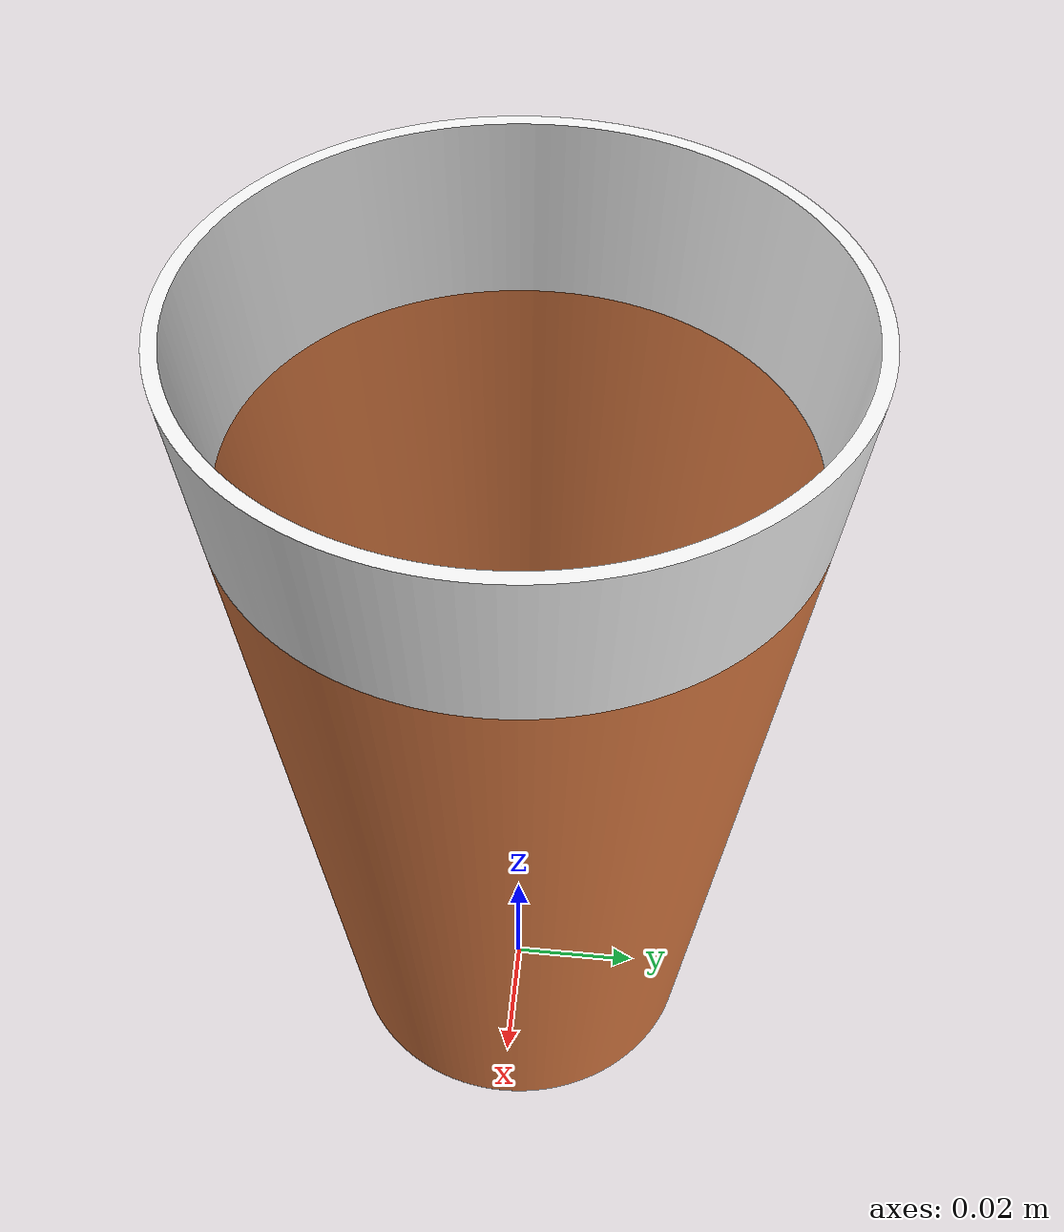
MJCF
<mujoco model="cup">
  <asset>
    <!-- visual shell split at z=0.113 (top 2.5 cm) so the rim reads white and
         the body reads warm. Meshes cut with scratchpad/slice_cup.py. -->
    <mesh name="cup_visual_top" file="mesh/cup_visual_top.obj"/>
    <mesh name="cup_visual_body" file="mesh/cup_visual_body.obj"/>
    <material name="cup_top_mat" rgba="0.95 0.95 0.95 1" specular="0.3" shininess="0.3"/>
    <texture name="cup_body_tex" type="2d" builtin="flat" rgb1="0.86 0.48 0.26" width="64" height="64"/>
    <material name="cup_body_mat" texture="cup_body_tex" specular="0.2" shininess="0.2"/>
    <mesh name="cup_coll_00" file="mesh/cup_coll_00.obj"/>
    <mesh name="cup_coll_01" file="mesh/cup_coll_01.obj"/>
    <mesh name="cup_coll_02" file="mesh/cup_coll_02.obj"/>
    <mesh name="cup_coll_03" file="mesh/cup_coll_03.obj"/>
    <mesh name="cup_coll_04" file="mesh/cup_coll_04.obj"/>
    <mesh name="cup_coll_05" file="mesh/cup_coll_05.obj"/>
    <mesh name="cup_coll_06" file="mesh/cup_coll_06.obj"/>
    <mesh name="cup_coll_07" file="mesh/cup_coll_07.obj"/>
    <mesh name="cup_coll_08" file="mesh/cup_coll_08.obj"/>
    <mesh name="cup_coll_09" file="mesh/cup_coll_09.obj"/>
    <mesh name="cup_coll_10" file="mesh/cup_coll_10.obj"/>
    <mesh name="cup_coll_11" file="mesh/cup_coll_11.obj"/>
    <mesh name="cup_coll_12" file="mesh/cup_coll_12.obj"/>
    <mesh name="cup_coll_13" file="mesh/cup_coll_13.obj"/>
    <mesh name="cup_coll_14" file="mesh/cup_coll_14.obj"/>
    <mesh name="cup_coll_15" file="mesh/cup_coll_15.obj"/>
    <mesh name="cup_coll_16" file="mesh/cup_coll_16.obj"/>
    <mesh name="cup_coll_17" file="mesh/cup_coll_17.obj"/>
    <mesh name="cup_coll_18" file="mesh/cup_coll_18.obj"/>
    <mesh name="cup_coll_19" file="mesh/cup_coll_19.obj"/>
    <mesh name="cup_coll_20" file="mesh/cup_coll_20.obj"/>
  </asset>
  <worldbody>
    <body name="cup" pos="0 0 0">
      <freejoint/>
      <inertial pos="0 0 0.05" mass="0.12" diaginertia="2e-4 2e-4 1e-4"/>
      <geom name="cup_visual" type="mesh" mesh="cup_visual_body" contype="0" conaffinity="0"
            group="0" material="cup_body_mat"/>
      <geom name="cup_visual_top" type="mesh" mesh="cup_visual_top" contype="0" conaffinity="0"
            group="0" material="cup_top_mat"/>
      <geom name="cup_coll_00" type="mesh" mesh="cup_coll_00" group="3" rgba="0.8 0.75 0.55 0.4" friction="1.0 0.02 0.001"/>
      <geom name="cup_coll_01" type="mesh" mesh="cup_coll_01" group="3" rgba="0.8 0.75 0.55 0.4" friction="1.0 0.02 0.001"/>
      <geom name="cup_coll_02" type="mesh" mesh="cup_coll_02" group="3" rgba="0.8 0.75 0.55 0.4" friction="1.0 0.02 0.001"/>
      <geom name="cup_coll_03" type="mesh" mesh="cup_coll_03" group="3" rgba="0.8 0.75 0.55 0.4" friction="1.0 0.02 0.001"/>
      <geom name="cup_coll_04" type="mesh" mesh="cup_coll_04" group="3" rgba="0.8 0.75 0.55 0.4" friction="1.0 0.02 0.001"/>
      <geom name="cup_coll_05" type="mesh" mesh="cup_coll_05" group="3" rgba="0.8 0.75 0.55 0.4" friction="1.0 0.02 0.001"/>
      <geom name="cup_coll_06" type="mesh" mesh="cup_coll_06" group="3" rgba="0.8 0.75 0.55 0.4" friction="1.0 0.02 0.001"/>
      <geom name="cup_coll_07" type="mesh" mesh="cup_coll_07" group="3" rgba="0.8 0.75 0.55 0.4" friction="1.0 0.02 0.001"/>
      <geom name="cup_coll_08" type="mesh" mesh="cup_coll_08" group="3" rgba="0.8 0.75 0.55 0.4" friction="1.0 0.02 0.001"/>
      <geom name="cup_coll_09" type="mesh" mesh="cup_coll_09" group="3" rgba="0.8 0.75 0.55 0.4" friction="1.0 0.02 0.001"/>
      <geom name="cup_coll_10" type="mesh" mesh="cup_coll_10" group="3" rgba="0.8 0.75 0.55 0.4" friction="1.0 0.02 0.001"/>
      <geom name="cup_coll_11" type="mesh" mesh="cup_coll_11" group="3" rgba="0.8 0.75 0.55 0.4" friction="1.0 0.02 0.001"/>
      <geom name="cup_coll_12" type="mesh" mesh="cup_coll_12" group="3" rgba="0.8 0.75 0.55 0.4" friction="1.0 0.02 0.001"/>
      <geom name="cup_coll_13" type="mesh" mesh="cup_coll_13" group="3" rgba="0.8 0.75 0.55 0.4" friction="1.0 0.02 0.001"/>
      <geom name="cup_coll_14" type="mesh" mesh="cup_coll_14" group="3" rgba="0.8 0.75 0.55 0.4" friction="1.0 0.02 0.001"/>
      <geom name="cup_coll_15" type="mesh" mesh="cup_coll_15" group="3" rgba="0.8 0.75 0.55 0.4" friction="1.0 0.02 0.001"/>
      <geom name="cup_coll_16" type="mesh" mesh="cup_coll_16" group="3" rgba="0.8 0.75 0.55 0.4" friction="1.0 0.02 0.001"/>
      <geom name="cup_coll_17" type="mesh" mesh="cup_coll_17" group="3" rgba="0.8 0.75 0.55 0.4" friction="1.0 0.02 0.001"/>
      <geom name="cup_coll_18" type="mesh" mesh="cup_coll_18" group="3" rgba="0.8 0.75 0.55 0.4" friction="1.0 0.02 0.001"/>
      <geom name="cup_coll_19" type="mesh" mesh="cup_coll_19" group="3" rgba="0.8 0.75 0.55 0.4" friction="1.0 0.02 0.001"/>
      <geom name="cup_coll_20" type="mesh" mesh="cup_coll_20" group="3" rgba="0.8 0.75 0.55 0.4" friction="1.0 0.02 0.001"/>
    </body>
  </worldbody>
</mujoco>
